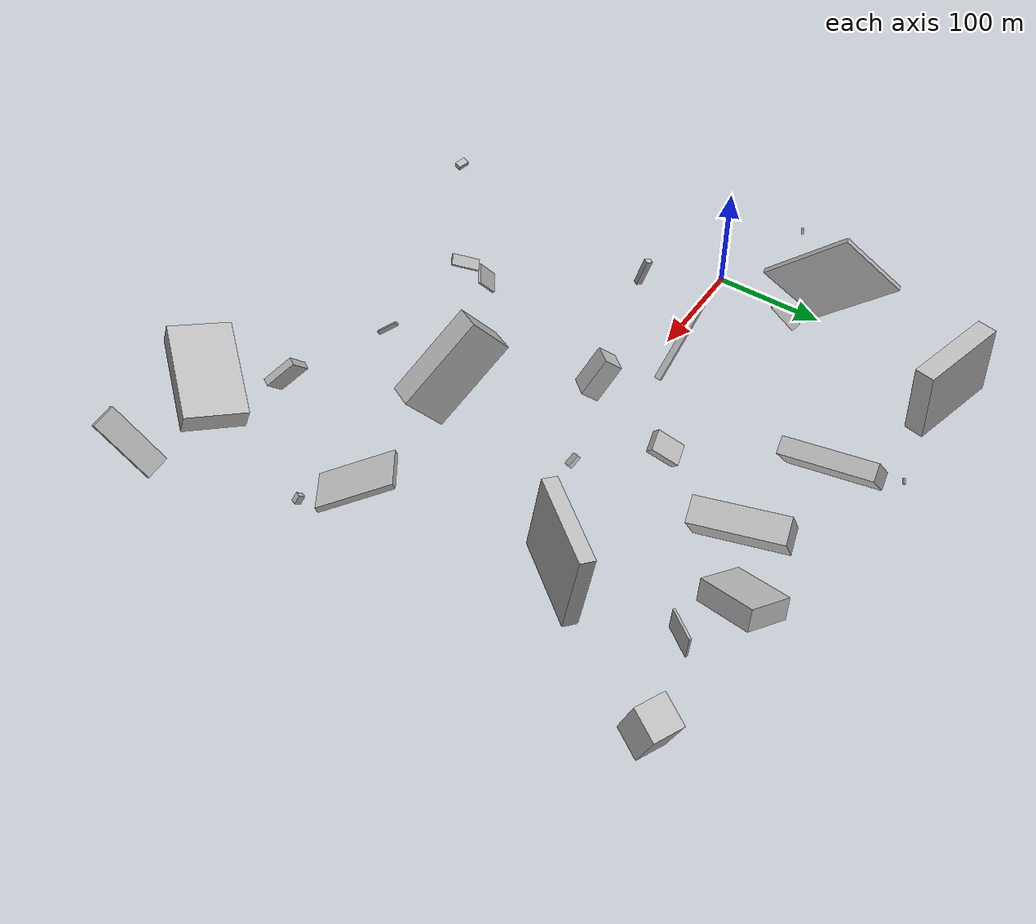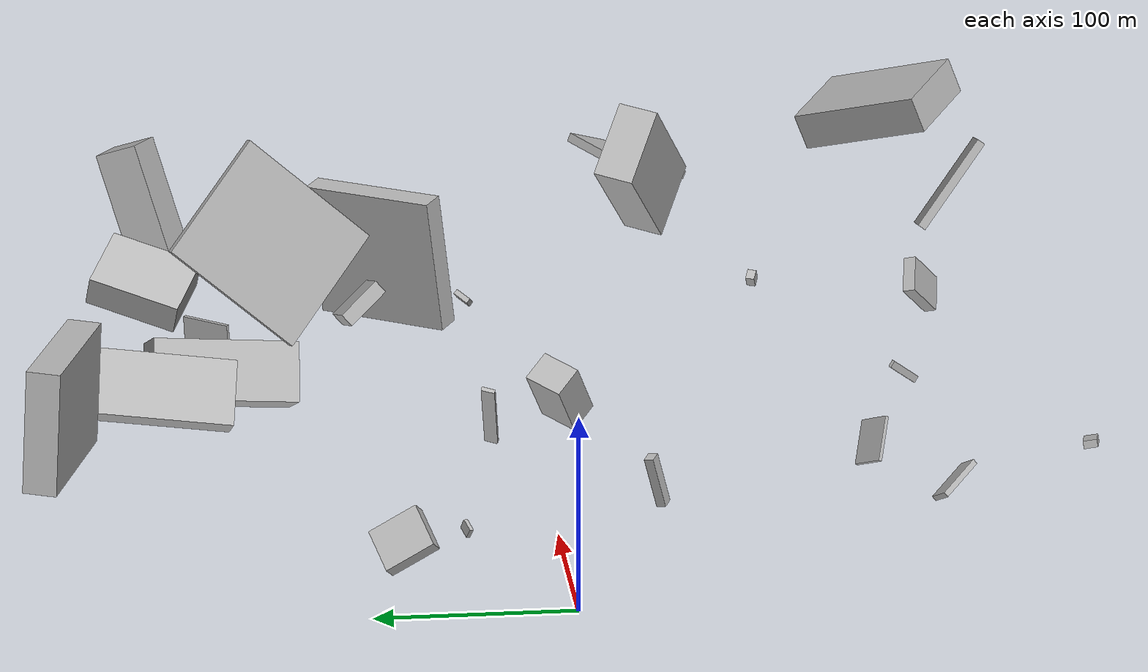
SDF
<sdf version="1.6">
 <world name="default">
  <scene>
   <sky><clouds><speed>12</speed></clouds></sky>
   <ambient>0.4 0.4 0.4 1</ambient>
   <background>0.7 0.7 0.7 1</background>
   <shadows>1</shadows>
  </scene>
  <gravity>0 0 -9.8066</gravity>
  <magnetic_field>6e-06 2.3e-05 -4.2e-05</magnetic_field>
  <physics default="0" name="default_physics" type="ode">
   <ode>
    <solver>
     <type>quick</type>
     <iters>10</iters>
     <sor>1.0</sor>
     <use_dynamic_moi_rescaling>0</use_dynamic_moi_rescaling>
    </solver>
    <constraints>
     <cfm>0</cfm>
     <erp>0.2</erp>
     <contact_max_correcting_vel>100</contact_max_correcting_vel>
     <contact_surface_layer>0.001</contact_surface_layer>
    </constraints>
   </ode>
   <max_step_size>0.004</max_step_size>
   <real_time_factor>1</real_time_factor>
   <real_time_update_rate>250</real_time_update_rate>
  </physics>
  <light name="sun" type="directional">
   <pose>0 0 10 0 0 0</pose>
   <diffuse>0.8 0.8 0.8 1</diffuse>
   <specular>0.2 0.2 0.2 1</specular>
   <attenuation>
    <range>1000</range>
    <constant>0.9</constant>
    <linear>0.01</linear>
    <quadratic>0.001</quadratic>
   </attenuation>
   <direction>-0.5 0.1 -0.9</direction>
  </light>
  <model name="building_1">
   <static>0</static>
   <pose>125.12002727792157 -208.7827541342749 10.898259711003838 -0.49576838800990547 0.494543051244291 0.49736913490497214</pose>
   <link name="link">
    <gravity>0</gravity>
    <pose>0 0 1.5 0 0 0</pose>
    <collision name="collision"><geometry><box><size>11 27 3</size></box></geometry></collision>
    <visual name="visual">
     <cast_shadows>0</cast_shadows>
     <geometry><box><size>11 27 3</size></box></geometry>
     <material>
      <script>
       <uri>model://HANNAS_wall/materials/scripts</uri>
       <uri>model://HANNAS_wall/materials/textures</uri>
       <name>vrc/HANNAS_wall</name>
      </script>
     </material>
    </visual>
   </link>
  </model>
  <model name="building_2">
   <static>0</static>
   <pose>437.24280583783536 -221.84721334023743 113.27810274830875 -0.2571162079951668 0.2911305377038848 0.8708482530233251</pose>
   <link name="link">
    <gravity>0</gravity>
    <pose>0 0 10.5 0 0 0</pose>
    <collision name="collision"><geometry><box><size>80 49 21</size></box></geometry></collision>
    <visual name="visual">
     <cast_shadows>0</cast_shadows>
     <geometry><box><size>80 49 21</size></box></geometry>
     <material>
      <script>
       <uri>model://HANNAS_wall/materials/scripts</uri>
       <uri>model://HANNAS_wall/materials/textures</uri>
       <name>vrc/HANNAS_wall</name>
      </script>
     </material>
    </visual>
   </link>
  </model>
  <model name="building_3">
   <static>0</static>
   <pose>146.37847888515904 -168.58557552159053 27.181879450144336 -1.0571020036269767 0.38888167142390956 0.5927180577837572</pose>
   <link name="link">
    <gravity>0</gravity>
    <pose>0 0 1.0 0 0 0</pose>
    <collision name="collision"><geometry><box><size>19 24 2</size></box></geometry></collision>
    <visual name="visual">
     <cast_shadows>0</cast_shadows>
     <geometry><box><size>19 24 2</size></box></geometry>
     <material>
      <script>
       <uri>model://HANNAS_wall/materials/scripts</uri>
       <uri>model://HANNAS_wall/materials/textures</uri>
       <name>vrc/HANNAS_wall</name>
      </script>
     </material>
    </visual>
   </link>
  </model>
  <model name="building_4">
   <static>0</static>
   <pose>351.5805541028292 -226.14678295858036 41.835952915212935 1.161310060964224 -0.8461780559293518 -0.18777308087447403</pose>
   <link name="link">
    <gravity>0</gravity>
    <pose>0 0 3.5 0 0 0</pose>
    <collision name="collision"><geometry><box><size>20 31 7</size></box></geometry></collision>
    <visual name="visual">
     <cast_shadows>0</cast_shadows>
     <geometry><box><size>20 31 7</size></box></geometry>
     <material>
      <script>
       <uri>model://HANNAS_wall/materials/scripts</uri>
       <uri>model://HANNAS_wall/materials/textures</uri>
       <name>vrc/HANNAS_wall</name>
      </script>
     </material>
    </visual>
   </link>
  </model>
  <model name="building_5">
   <static>0</static>
   <pose>243.6459869492537 -194.85347432579908 34.29275382613381 3.0489986858576525 0.9427201455091925 1.9754072672068856</pose>
   <link name="link">
    <gravity>0</gravity>
    <pose>0 0 10.5 0 0 0</pose>
    <collision name="collision"><geometry><box><size>4 2 21</size></box></geometry></collision>
    <visual name="visual">
     <cast_shadows>0</cast_shadows>
     <geometry><box><size>4 2 21</size></box></geometry>
     <material>
      <script>
       <uri>model://HANNAS_wall/materials/scripts</uri>
       <uri>model://HANNAS_wall/materials/textures</uri>
       <name>vrc/HANNAS_wall</name>
      </script>
     </material>
    </visual>
   </link>
  </model>
  <model name="building_6">
   <static>0</static>
   <pose>274.29447397600734 91.96500616872429 68.7047308412883 -1.1440944855326838 -0.855922789784386 1.478104107927303</pose>
   <link name="link">
    <gravity>0</gravity>
    <pose>0 0 9.0 0 0 0</pose>
    <collision name="collision"><geometry><box><size>8 26 18</size></box></geometry></collision>
    <visual name="visual">
     <cast_shadows>0</cast_shadows>
     <geometry><box><size>8 26 18</size></box></geometry>
     <material>
      <script>
       <uri>model://HANNAS_wall/materials/scripts</uri>
       <uri>model://HANNAS_wall/materials/textures</uri>
       <name>vrc/HANNAS_wall</name>
      </script>
     </material>
    </visual>
   </link>
  </model>
  <model name="building_7">
   <static>0</static>
   <pose>260.6457855181054 161.21233593509817 37.59459449629631 2.03507365646338 -0.12704212293231582 1.7715722808108647</pose>
   <link name="link">
    <gravity>0</gravity>
    <pose>0 0 11.5 0 0 0</pose>
    <collision name="collision"><geometry><box><size>80 33 23</size></box></geometry></collision>
    <visual name="visual">
     <cast_shadows>0</cast_shadows>
     <geometry><box><size>80 33 23</size></box></geometry>
     <material>
      <script>
       <uri>model://HANNAS_wall/materials/scripts</uri>
       <uri>model://HANNAS_wall/materials/textures</uri>
       <name>vrc/HANNAS_wall</name>
      </script>
     </material>
    </visual>
   </link>
  </model>
  <model name="building_8">
   <static>0</static>
   <pose>331.1397171787655 -58.670551683656306 123.54656571637689 -1.743600006857409 -0.6568943019731753 2.7576715054868033</pose>
   <link name="link">
    <gravity>0</gravity>
    <pose>0 0 11.0 0 0 0</pose>
    <collision name="collision"><geometry><box><size>80 42 22</size></box></geometry></collision>
    <visual name="visual">
     <cast_shadows>0</cast_shadows>
     <geometry><box><size>80 42 22</size></box></geometry>
     <material>
      <script>
       <uri>model://HANNAS_wall/materials/scripts</uri>
       <uri>model://HANNAS_wall/materials/textures</uri>
       <name>vrc/HANNAS_wall</name>
      </script>
     </material>
    </visual>
   </link>
  </model>
  <model name="building_9">
   <static>0</static>
   <pose>471.38421613363016 191.5746022183485 70.60815960313899 -2.990711309078637 -1.2249826309842098 0.9572372406032627</pose>
   <link name="link">
    <gravity>0</gravity>
    <pose>0 0 13.0 0 0 0</pose>
    <collision name="collision"><geometry><box><size>65 24 26</size></box></geometry></collision>
    <visual name="visual">
     <cast_shadows>0</cast_shadows>
     <geometry><box><size>65 24 26</size></box></geometry>
     <material>
      <script>
       <uri>model://HANNAS_wall/materials/scripts</uri>
       <uri>model://HANNAS_wall/materials/textures</uri>
       <name>vrc/HANNAS_wall</name>
      </script>
     </material>
    </visual>
   </link>
  </model>
  <model name="building_10">
   <static>0</static>
   <pose>124.77916434634622 236.75422670797045 83.06899263740925 1.5655354683472862 0.06707395909643062 -1.825058564785078</pose>
   <link name="link">
    <gravity>0</gravity>
    <pose>0 0 40.0 0 0 0</pose>
    <collision name="collision"><geometry><box><size>17 63 80</size></box></geometry></collision>
    <visual name="visual">
     <cast_shadows>0</cast_shadows>
     <geometry><box><size>17 63 80</size></box></geometry>
     <material>
      <script>
       <uri>model://HANNAS_wall/materials/scripts</uri>
       <uri>model://HANNAS_wall/materials/textures</uri>
       <name>vrc/HANNAS_wall</name>
      </script>
     </material>
    </visual>
   </link>
  </model>
  <model name="building_11">
   <static>0</static>
   <pose>72.5939056746137 -47.94249035976594 40.24091823045046 -2.668316089855128 -1.2697769366399554 2.1301239372924927</pose>
   <link name="link">
    <gravity>0</gravity>
    <pose>0 0 3.0 0 0 0</pose>
    <collision name="collision"><geometry><box><size>28 5 6</size></box></geometry></collision>
    <visual name="visual">
     <cast_shadows>0</cast_shadows>
     <geometry><box><size>28 5 6</size></box></geometry>
     <material>
      <script>
       <uri>model://HANNAS_wall/materials/scripts</uri>
       <uri>model://HANNAS_wall/materials/textures</uri>
       <name>vrc/HANNAS_wall</name>
      </script>
     </material>
    </visual>
   </link>
  </model>
  <model name="building_12">
   <static>0</static>
   <pose>352.4738494509474 205.05312579244804 51.290747954998935 0.41076358796297485 0.2892085894370221 -1.8401768900862285</pose>
   <link name="link">
    <gravity>0</gravity>
    <pose>0 0 9.0 0 0 0</pose>
    <collision name="collision"><geometry><box><size>51 40 18</size></box></geometry></collision>
    <visual name="visual">
     <cast_shadows>0</cast_shadows>
     <geometry><box><size>51 40 18</size></box></geometry>
     <material>
      <script>
       <uri>model://HANNAS_wall/materials/scripts</uri>
       <uri>model://HANNAS_wall/materials/textures</uri>
       <name>vrc/HANNAS_wall</name>
      </script>
     </material>
    </visual>
   </link>
  </model>
  <model name="building_13">
   <static>0</static>
   <pose>182.2590869165769 200.90636815897665 38.30650191578108 -0.18605953809364273 -0.5803174078281941 -2.9728350483269943</pose>
   <link name="link">
    <gravity>0</gravity>
    <pose>0 0 17.5 0 0 0</pose>
    <collision name="collision"><geometry><box><size>15 80 35</size></box></geometry></collision>
    <visual name="visual">
     <cast_shadows>0</cast_shadows>
     <geometry><box><size>15 80 35</size></box></geometry>
     <material>
      <script>
       <uri>model://HANNAS_wall/materials/scripts</uri>
       <uri>model://HANNAS_wall/materials/textures</uri>
       <name>vrc/HANNAS_wall</name>
      </script>
     </material>
    </visual>
   </link>
  </model>
  <model name="building_14">
   <static>0</static>
   <pose>47.8003880172595 -260.4743694625669 58.75531969024925 -2.0228562579246754 1.3343447606986578 -2.277894032399984</pose>
   <link name="link">
    <gravity>0</gravity>
    <pose>0 0 5.5 0 0 0</pose>
    <collision name="collision"><geometry><box><size>4 7 11</size></box></geometry></collision>
    <visual name="visual">
     <cast_shadows>0</cast_shadows>
     <geometry><box><size>4 7 11</size></box></geometry>
     <material>
      <script>
       <uri>model://HANNAS_wall/materials/scripts</uri>
       <uri>model://HANNAS_wall/materials/textures</uri>
       <name>vrc/HANNAS_wall</name>
      </script>
     </material>
    </visual>
   </link>
  </model>
  <model name="building_15">
   <static>0</static>
   <pose>391.37795525390845 67.33080103425078 59.93328388350111 -2.9750495508873196 -1.4109388024482294 2.339280400840335</pose>
   <link name="link">
    <gravity>0</gravity>
    <pose>0 0 6.5 0 0 0</pose>
    <collision name="collision"><geometry><box><size>77 80 13</size></box></geometry></collision>
    <visual name="visual">
     <cast_shadows>0</cast_shadows>
     <geometry><box><size>77 80 13</size></box></geometry>
     <material>
      <script>
       <uri>model://HANNAS_wall/materials/scripts</uri>
       <uri>model://HANNAS_wall/materials/textures</uri>
       <name>vrc/HANNAS_wall</name>
      </script>
     </material>
    </visual>
   </link>
  </model>
  <model name="building_16">
   <static>0</static>
   <pose>154.6302199349953 250.23847852703378 22.605387939300087 -0.6978796783704537 -0.7944383817463151 1.3832668406922826</pose>
   <link name="link">
    <gravity>0</gravity>
    <pose>0 0 2.5 0 0 0</pose>
    <collision name="collision"><geometry><box><size>2 2 5</size></box></geometry></collision>
    <visual name="visual">
     <cast_shadows>0</cast_shadows>
     <geometry><box><size>2 2 5</size></box></geometry>
     <material>
      <script>
       <uri>model://HANNAS_wall/materials/scripts</uri>
       <uri>model://HANNAS_wall/materials/textures</uri>
       <name>vrc/HANNAS_wall</name>
      </script>
     </material>
    </visual>
   </link>
  </model>
  <model name="building_17">
   <static>0</static>
   <pose>136.4182109676936 31.544988270141094 51.29129775842209 0.2451795374255572 0.6791286307536004 -0.11142681230081607</pose>
   <link name="link">
    <gravity>0</gravity>
    <pose>0 0 1.0 0 0 0</pose>
    <collision name="collision"><geometry><box><size>80 7 2</size></box></geometry></collision>
    <visual name="visual">
     <cast_shadows>0</cast_shadows>
     <geometry><box><size>80 7 2</size></box></geometry>
     <material>
      <script>
       <uri>model://HANNAS_wall/materials/scripts</uri>
       <uri>model://HANNAS_wall/materials/textures</uri>
       <name>vrc/HANNAS_wall</name>
      </script>
     </material>
    </visual>
   </link>
  </model>
  <model name="building_18">
   <static>0</static>
   <pose>432.49697349938253 -145.44775894762907 24.146587926519715 2.4168231483363734 -0.06023023629158904 1.1899352784959478</pose>
   <link name="link">
    <gravity>0</gravity>
    <pose>0 0 4.0 0 0 0</pose>
    <collision name="collision"><geometry><box><size>5 6 8</size></box></geometry></collision>
    <visual name="visual">
     <cast_shadows>0</cast_shadows>
     <geometry><box><size>5 6 8</size></box></geometry>
     <material>
      <script>
       <uri>model://HANNAS_wall/materials/scripts</uri>
       <uri>model://HANNAS_wall/materials/textures</uri>
       <name>vrc/HANNAS_wall</name>
      </script>
     </material>
    </visual>
   </link>
  </model>
  <model name="building_19">
   <static>0</static>
   <pose>209.33845183367714 -3.3029675303025527 42.383834811104684 -1.9241697138186658 -0.8808338491861931 2.6729005286460628</pose>
   <link name="link">
    <gravity>0</gravity>
    <pose>0 0 11.0 0 0 0</pose>
    <collision name="collision"><geometry><box><size>36 17 22</size></box></geometry></collision>
    <visual name="visual">
     <cast_shadows>0</cast_shadows>
     <geometry><box><size>36 17 22</size></box></geometry>
     <material>
      <script>
       <uri>model://HANNAS_wall/materials/scripts</uri>
       <uri>model://HANNAS_wall/materials/textures</uri>
       <name>vrc/HANNAS_wall</name>
      </script>
     </material>
    </visual>
   </link>
  </model>
  <model name="building_20">
   <static>0</static>
   <pose>304.77948953106403 27.552722733141042 55.93274762978913 0.9804430337228203 -0.5013361127481893 2.8950474872963987</pose>
   <link name="link">
    <gravity>0</gravity>
    <pose>0 0 4.5 0 0 0</pose>
    <collision name="collision"><geometry><box><size>11 3 9</size></box></geometry></collision>
    <visual name="visual">
     <cast_shadows>0</cast_shadows>
     <geometry><box><size>11 3 9</size></box></geometry>
     <material>
      <script>
       <uri>model://HANNAS_wall/materials/scripts</uri>
       <uri>model://HANNAS_wall/materials/textures</uri>
       <name>vrc/HANNAS_wall</name>
      </script>
     </material>
    </visual>
   </link>
  </model>
  <model name="building_21">
   <static>0</static>
   <pose>98.08466852819907 162.41980840527845 132.37036400750873 0.30067540782520746 -0.7372546311061331 1.706597460172688</pose>
   <link name="link">
    <gravity>0</gravity>
    <pose>0 0 34.0 0 0 0</pose>
    <collision name="collision"><geometry><box><size>80 4 68</size></box></geometry></collision>
    <visual name="visual">
     <cast_shadows>0</cast_shadows>
     <geometry><box><size>80 4 68</size></box></geometry>
     <material>
      <script>
       <uri>model://HANNAS_wall/materials/scripts</uri>
       <uri>model://HANNAS_wall/materials/textures</uri>
       <name>vrc/HANNAS_wall</name>
      </script>
     </material>
    </visual>
   </link>
  </model>
  <model name="building_22">
   <static>0</static>
   <pose>438.3962564123705 -74.71800601877385 98.09725267308454 -2.7913733232056543 -0.1546548485904841 0.6263704914622866</pose>
   <link name="link">
    <gravity>0</gravity>
    <pose>0 0 2.5 0 0 0</pose>
    <collision name="collision"><geometry><box><size>38 62 5</size></box></geometry></collision>
    <visual name="visual">
     <cast_shadows>0</cast_shadows>
     <geometry><box><size>38 62 5</size></box></geometry>
     <material>
      <script>
       <uri>model://HANNAS_wall/materials/scripts</uri>
       <uri>model://HANNAS_wall/materials/textures</uri>
       <name>vrc/HANNAS_wall</name>
      </script>
     </material>
    </visual>
   </link>
  </model>
  <model name="building_23">
   <static>0</static>
   <pose>-38.47963870780724 56.52834269651578 62.384443905319344 2.972093258186911 0.4623016099357986 -2.7630208086089634</pose>
   <link name="link">
    <gravity>0</gravity>
    <pose>0 0 2.5 0 0 0</pose>
    <collision name="collision"><geometry><box><size>7 2 5</size></box></geometry></collision>
    <visual name="visual">
     <cast_shadows>0</cast_shadows>
     <geometry><box><size>7 2 5</size></box></geometry>
     <material>
      <script>
       <uri>model://HANNAS_wall/materials/scripts</uri>
       <uri>model://HANNAS_wall/materials/textures</uri>
       <name>vrc/HANNAS_wall</name>
      </script>
     </material>
    </visual>
   </link>
  </model>
  <model name="building_24">
   <static>0</static>
   <pose>475.3021640071253 -269.7535690113541 60.96103784106833 -1.8410319416888863 0.5965945842154902 -1.7827135307293973</pose>
   <link name="link">
    <gravity>0</gravity>
    <pose>0 0 10.5 0 0 0</pose>
    <collision name="collision"><geometry><box><size>5 61 21</size></box></geometry></collision>
    <visual name="visual">
     <cast_shadows>0</cast_shadows>
     <geometry><box><size>5 61 21</size></box></geometry>
     <material>
      <script>
       <uri>model://HANNAS_wall/materials/scripts</uri>
       <uri>model://HANNAS_wall/materials/textures</uri>
       <name>vrc/HANNAS_wall</name>
      </script>
     </material>
    </visual>
   </link>
  </model>
  <model name="building_25">
   <static>0</static>
   <pose>28.102415516915876 78.51925158977443 18.65236819149684 -0.6863972719080192 0.622504186682459 -0.5161183723596066</pose>
   <link name="link">
    <gravity>0</gravity>
    <pose>0 0 11.5 0 0 0</pose>
    <collision name="collision"><geometry><box><size>9 27 23</size></box></geometry></collision>
    <visual name="visual">
     <cast_shadows>0</cast_shadows>
     <geometry><box><size>9 27 23</size></box></geometry>
     <material>
      <script>
       <uri>model://HANNAS_wall/materials/scripts</uri>
       <uri>model://HANNAS_wall/materials/textures</uri>
       <name>vrc/HANNAS_wall</name>
      </script>
     </material>
    </visual>
   </link>
  </model>
  <model name="building_26">
   <static>0</static>
   <pose>364.368627840969 157.54080643677378 16.3589548308055 1.31441943131709 -1.484606269289525 2.7752986368090173</pose>
   <link name="link">
    <gravity>0</gravity>
    <pose>0 0 14.5 0 0 0</pose>
    <collision name="collision"><geometry><box><size>22 2 29</size></box></geometry></collision>
    <visual name="visual">
     <cast_shadows>0</cast_shadows>
     <geometry><box><size>22 2 29</size></box></geometry>
     <material>
      <script>
       <uri>model://HANNAS_wall/materials/scripts</uri>
       <uri>model://HANNAS_wall/materials/textures</uri>
       <name>vrc/HANNAS_wall</name>
      </script>
     </material>
    </visual>
   </link>
  </model>
 </world>
</sdf>
